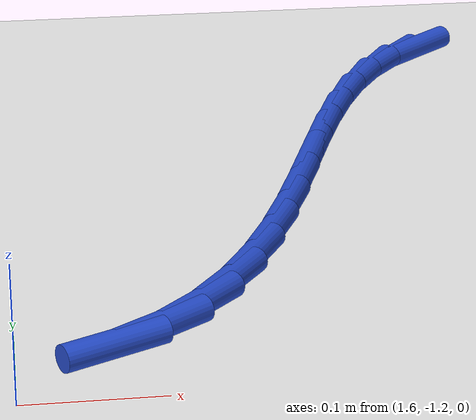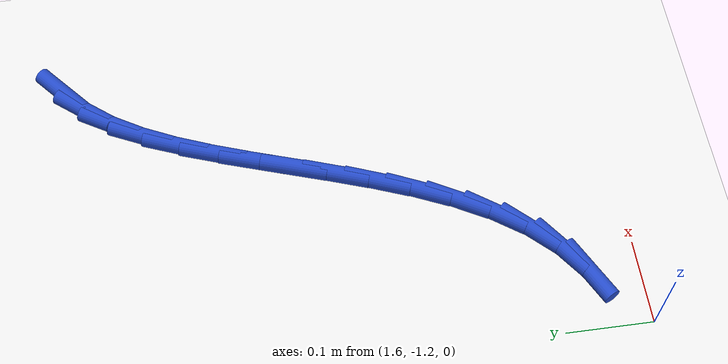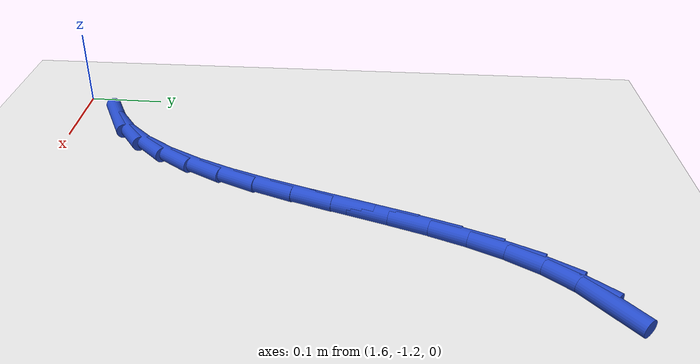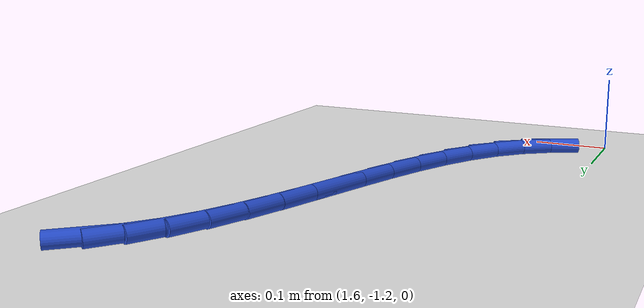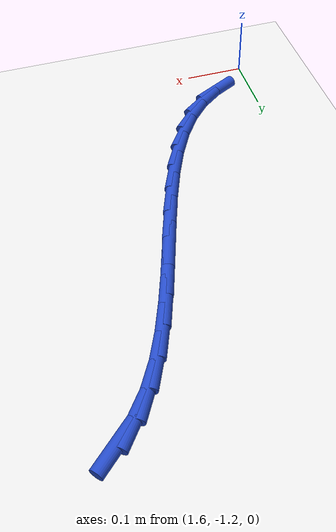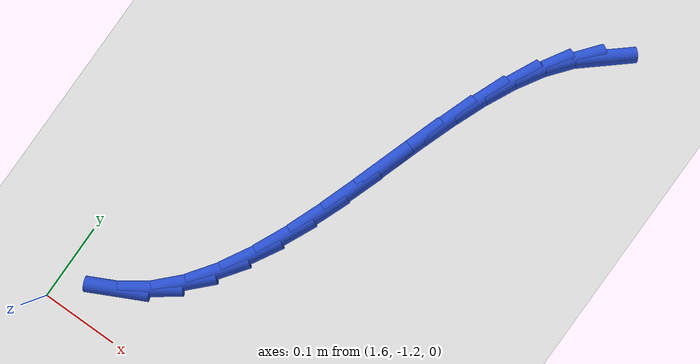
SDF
<sdf version="1.6">
 <world name="default">
  <model name="ground_plane">
   <static>1</static>
   <link name="link">
    <collision name="collision">
     <geometry><plane><normal>0 0 1</normal><size>100 100</size></plane></geometry>
     <surface><friction><ode><mu>100</mu><mu2>50</mu2></ode></friction></surface>
    </collision>
    <visual name="visual">
     <cast_shadows>0</cast_shadows>
     <geometry><plane><normal>0 0 1</normal><size>100 100</size></plane></geometry>
     <material>
      <script><uri>file://media/materials/scripts/gazebo.material</uri><name>Gazebo/WhiteGlow</name></script>
     </material>
    </visual>
   </link>
  </model>
  <model name="line">
   <link name="link_112">
    <pose>1.9852986051794412 -0.564894453214622 0.01 0 1.57 0.714387130441102</pose>
    <collision name="collision">
     <geometry><cylinder><radius>0.01</radius><length>0.08</length></cylinder></geometry>
    </collision>
    <visual name="visual">
     <material>
      <script><name>Gazebo/Blue</name><uri>file://media/materials/scripts/gazebo.material</uri></script>
     </material>
     <geometry><cylinder><radius>0.01</radius><length>0.08</length></cylinder></geometry>
    </visual>
   </link>
   <link name="link_113">
    <pose>1.9576122129902183 -0.5889037017316326 0.01 0 1.57 0.8966727583658333</pose>
    <collision name="collision">
     <geometry><cylinder><radius>0.01</radius><length>0.08</length></cylinder></geometry>
    </collision>
    <visual name="visual">
     <material>
      <script><name>Gazebo/Blue</name><uri>file://media/materials/scripts/gazebo.material</uri></script>
     </material>
     <geometry><cylinder><radius>0.01</radius><length>0.08</length></cylinder></geometry>
    </visual>
   </link>
   <link name="link_114">
    <pose>1.9335062825577043 -0.6190742803025827 0.01 0 1.57 1.0322877008396791</pose>
    <collision name="collision">
     <geometry><cylinder><radius>0.01</radius><length>0.08</length></cylinder></geometry>
    </collision>
    <visual name="visual">
     <material>
      <script><name>Gazebo/Blue</name><uri>file://media/materials/scripts/gazebo.material</uri></script>
     </material>
     <geometry><cylinder><radius>0.01</radius><length>0.08</length></cylinder></geometry>
    </visual>
   </link>
   <link name="link_115">
    <pose>1.9123680909926348 -0.6544576809103756 0.01 0 1.57 1.1283669141197321</pose>
    <collision name="collision">
     <geometry><cylinder><radius>0.01</radius><length>0.08</length></cylinder></geometry>
    </collision>
    <visual name="visual">
     <material>
      <script><name>Gazebo/Blue</name><uri>file://media/materials/scripts/gazebo.material</uri></script>
     </material>
     <geometry><cylinder><radius>0.01</radius><length>0.08</length></cylinder></geometry>
    </visual>
   </link>
   <link name="link_116">
    <pose>1.8935849154057443 -0.6941053955379147 0.01 0 1.57 1.1931932384514476</pose>
    <collision name="collision">
     <geometry><cylinder><radius>0.01</radius><length>0.08</length></cylinder></geometry>
    </collision>
    <visual name="visual">
     <material>
      <script><name>Gazebo/Blue</name><uri>file://media/materials/scripts/gazebo.material</uri></script>
     </material>
     <geometry><cylinder><radius>0.01</radius><length>0.08</length></cylinder></geometry>
    </visual>
   </link>
   <link name="link_117">
    <pose>1.8765440329077685 -0.7370689161681035 0.01 0 1.57 1.2332270875789029</pose>
    <collision name="collision">
     <geometry><cylinder><radius>0.01</radius><length>0.08</length></cylinder></geometry>
    </collision>
    <visual name="visual">
     <material>
      <script><name>Gazebo/Blue</name><uri>file://media/materials/scripts/gazebo.material</uri></script>
     </material>
     <geometry><cylinder><radius>0.01</radius><length>0.08</length></cylinder></geometry>
    </visual>
   </link>
   <link name="link_118">
    <pose>1.8606327206094422 -0.7823997347838443 0.01 0 1.57 1.2526836492376008</pose>
    <collision name="collision">
     <geometry><cylinder><radius>0.01</radius><length>0.08</length></cylinder></geometry>
    </collision>
    <visual name="visual">
     <material>
      <script><name>Gazebo/Blue</name><uri>file://media/materials/scripts/gazebo.material</uri></script>
     </material>
     <geometry><cylinder><radius>0.01</radius><length>0.08</length></cylinder></geometry>
    </visual>
   </link>
   <link name="link_119">
    <pose>1.8452382556215001 -0.8291493433680422 0.01 0 1.57 1.2538110483045182</pose>
    <collision name="collision">
     <geometry><cylinder><radius>0.01</radius><length>0.08</length></cylinder></geometry>
    </collision>
    <visual name="visual">
     <material>
      <script><name>Gazebo/Blue</name><uri>file://media/materials/scripts/gazebo.material</uri></script>
     </material>
     <geometry><cylinder><radius>0.01</radius><length>0.08</length></cylinder></geometry>
    </visual>
   </link>
   <link name="link_120">
    <pose>1.8297479150546774 -0.8763692339036 0.01 0 1.57 1.2371865534471767</pose>
    <collision name="collision">
     <geometry><cylinder><radius>0.01</radius><length>0.08</length></cylinder></geometry>
    </collision>
    <visual name="visual">
     <material>
      <script><name>Gazebo/Blue</name><uri>file://media/materials/scripts/gazebo.material</uri></script>
     </material>
     <geometry><cylinder><radius>0.01</radius><length>0.08</length></cylinder></geometry>
    </visual>
   </link>
   <link name="link_121">
    <pose>1.8135489760197097 -0.9231108983734209 0.01 0 1.57 1.2018658208484312</pose>
    <collision name="collision">
     <geometry><cylinder><radius>0.01</radius><length>0.08</length></cylinder></geometry>
    </collision>
    <visual name="visual">
     <material>
      <script><name>Gazebo/Blue</name><uri>file://media/materials/scripts/gazebo.material</uri></script>
     </material>
     <geometry><cylinder><radius>0.01</radius><length>0.08</length></cylinder></geometry>
    </visual>
   </link>
   <link name="link_122">
    <pose>1.7960287156273314 -0.9684258287604086 0.01 0 1.57 1.145399662475779</pose>
    <collision name="collision">
     <geometry><cylinder><radius>0.01</radius><length>0.08</length></cylinder></geometry>
    </collision>
    <visual name="visual">
     <material>
      <script><name>Gazebo/Blue</name><uri>file://media/materials/scripts/gazebo.material</uri></script>
     </material>
     <geometry><cylinder><radius>0.01</radius><length>0.08</length></cylinder></geometry>
    </visual>
   </link>
   <link name="link_123">
    <pose>1.776574410988278 -1.0113655170474658 0.01 0 1.57 1.0638479564813916</pose>
    <collision name="collision">
     <geometry><cylinder><radius>0.01</radius><length>0.08</length></cylinder></geometry>
    </collision>
    <visual name="visual">
     <material>
      <script><name>Gazebo/Blue</name><uri>file://media/materials/scripts/gazebo.material</uri></script>
     </material>
     <geometry><cylinder><radius>0.01</radius><length>0.08</length></cylinder></geometry>
    </visual>
   </link>
   <link name="link_124">
    <pose>1.7545733392132838 -1.0509814552174963 0.01 0 1.57 0.9521396956507986</pose>
    <collision name="collision">
     <geometry><cylinder><radius>0.01</radius><length>0.08</length></cylinder></geometry>
    </collision>
    <visual name="visual">
     <material>
      <script><name>Gazebo/Blue</name><uri>file://media/materials/scripts/gazebo.material</uri></script>
     </material>
     <geometry><cylinder><radius>0.01</radius><length>0.08</length></cylinder></geometry>
    </visual>
   </link>
   <link name="link_125">
    <pose>1.7294127774130854 -1.0863251352534031 0.01 0 1.57 0.8055482643926429</pose>
    <collision name="collision">
     <geometry><cylinder><radius>0.01</radius><length>0.08</length></cylinder></geometry>
    </collision>
    <visual name="visual">
     <material>
      <script><name>Gazebo/Blue</name><uri>file://media/materials/scripts/gazebo.material</uri></script>
     </material>
     <geometry><cylinder><radius>0.01</radius><length>0.08</length></cylinder></geometry>
    </visual>
   </link>
   <link name="link_126">
    <pose>1.7004800026984173 -1.116448049138091 0.01 0 1.57 0.6250203932808094</pose>
    <collision name="collision">
     <geometry><cylinder><radius>0.01</radius><length>0.08</length></cylinder></geometry>
    </collision>
    <visual name="visual">
     <material>
      <script><name>Gazebo/Blue</name><uri>file://media/materials/scripts/gazebo.material</uri></script>
     </material>
     <geometry><cylinder><radius>0.01</radius><length>0.08</length></cylinder></geometry>
    </visual>
   </link>
   <link name="link_127">
    <pose>1.6672011584968083 -1.1404592493957568 0.01 0 1.57 0.4658612995841564</pose>
    <collision name="collision">
     <geometry><cylinder><radius>0.01</radius><length>0.08</length></cylinder></geometry>
    </collision>
    <visual name="visual">
     <material>
      <script><name>Gazebo/Blue</name><uri>file://media/materials/scripts/gazebo.material</uri></script>
     </material>
     <geometry><cylinder><radius>0.01</radius><length>0.08</length></cylinder></geometry>
    </visual>
   </link>
  </model>
 </world>
</sdf>
